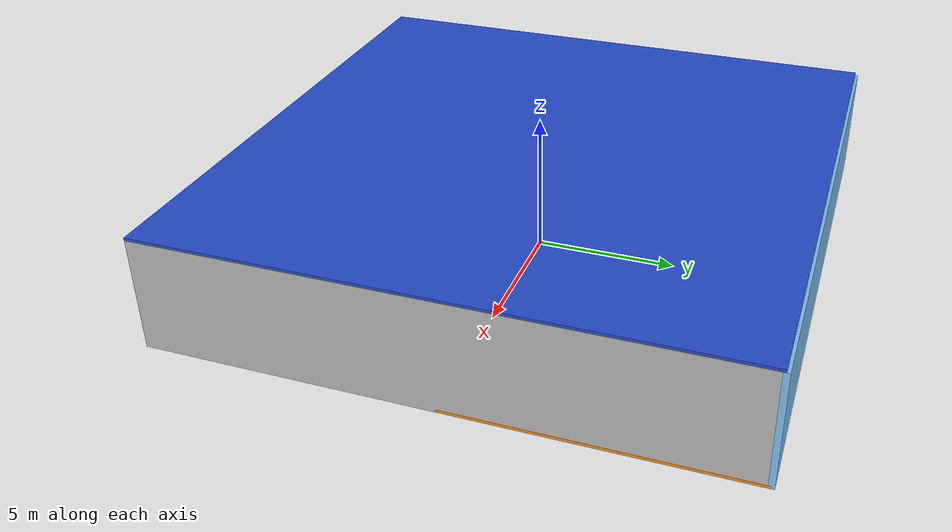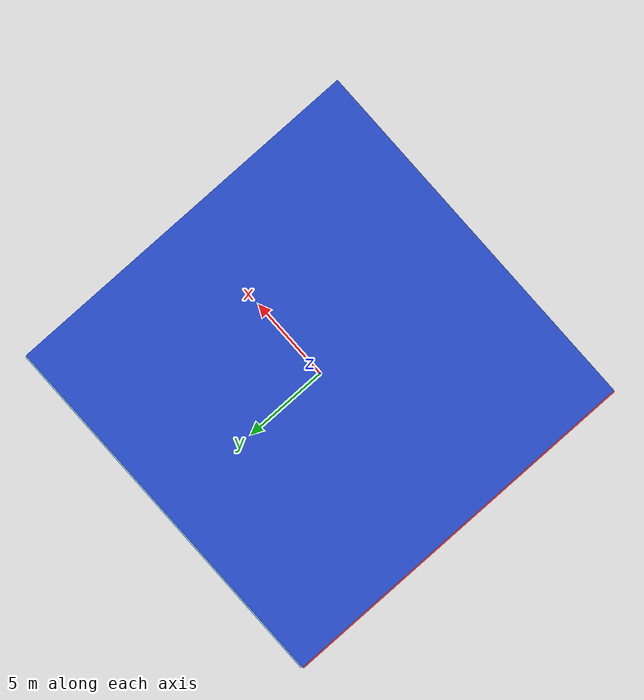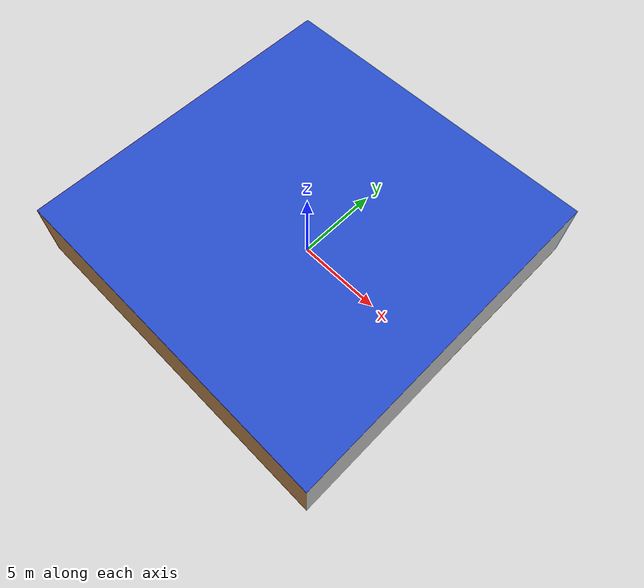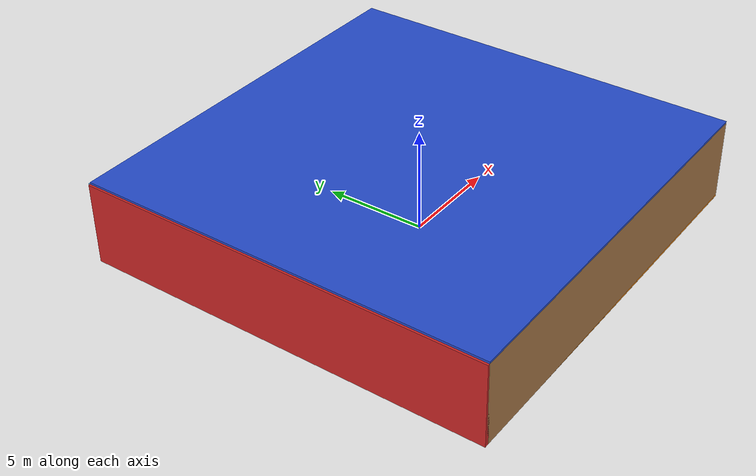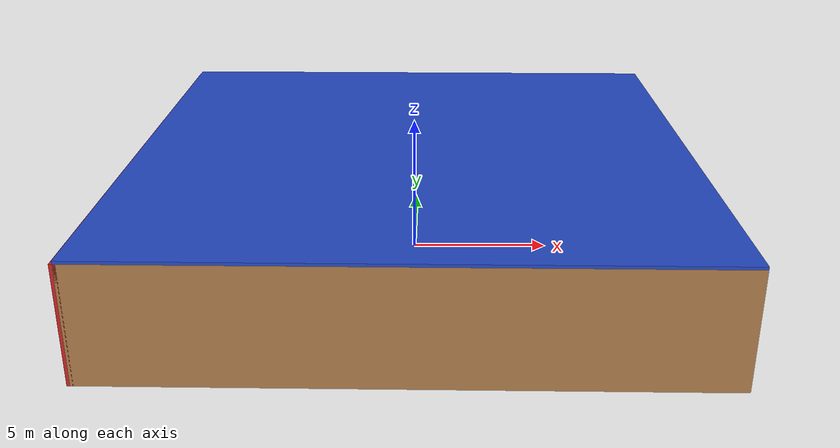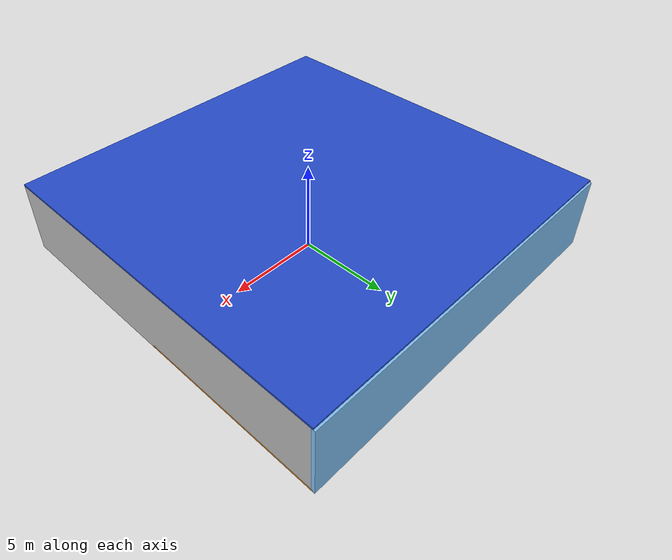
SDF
<sdf version="1.4">
 <world name="default">
  <physics type="ode">
   <max_step_size>0.001</max_step_size>
   <real_time_factor>1</real_time_factor>
   <real_time_update_rate>1000</real_time_update_rate>
   <gravity>0 0 -9.8</gravity>
  </physics>
  <scene><ambient>0.4 0.4 0.4 1</ambient><background>0.7 0.7 0.7 1</background><shadows>1</shadows></scene>
  <model name="Surrounding">
   <static>1</static>
   <link name="Ceiling">
    <collision name="Ceiling_Collision"><geometry><box><size>20 20 0.1</size></box></geometry></collision>
    <visual name="Ceiling_Visual">
     <geometry><box><size>20 20 0.1</size></box></geometry>
     <material>
      <script><uri>file://media/materials/scripts/gazebo.material</uri><name>Gazebo/BlueGlow</name></script>
     </material>
    </visual>
    <pose>0 0 4.05 0 0 0</pose>
   </link>
   <link name="Wall_South">
    <collision name="Wall_South_Collision">
     <geometry><box><size>20 0 4</size></box></geometry>
     <pose>0 0 2 0 -0 0</pose>
    </collision>
    <visual name="Wall_South_Visual">
     <pose>0 0 2 0 -0 0</pose>
     <geometry><box><size>20 0 4</size></box></geometry>
     <material>
      <script><uri>file://media/materials/scripts/gazebo.material</uri><name>Gazebo/WoodPallet</name></script>
     </material>
    </visual>
    <velocity_decay><linear>0</linear><angular>0</angular></velocity_decay>
    <pose>0 -10 0 0 -0 0</pose>
   </link>
   <link name="Wall_East">
    <collision name="Wall_21_Collision">
     <geometry><box><size>20 0 4</size></box></geometry>
     <pose>0 0 2 0 -0 0</pose>
    </collision>
    <visual name="Wall_21_Visual">
     <pose>0 0 2 0 -0 0</pose>
     <geometry><box><size>20 0 4</size></box></geometry>
     <material>
      <script><uri>file://media/materials/scripts/gazebo.material</uri><name>Gazebo/CloudySky</name></script>
     </material>
    </visual>
    <velocity_decay><linear>0</linear><angular>0</angular></velocity_decay>
    <pose>10 0 0 0 -0 1.5708</pose>
   </link>
   <link name="Wall_North">
    <collision name="Wall_22_Collision">
     <geometry><box><size>20 0.2 4</size></box></geometry>
     <pose>0 0 2 0 -0 0</pose>
    </collision>
    <visual name="Wall_22_Visual">
     <pose>0 0 2 0 -0 0</pose>
     <geometry><box><size>20 0.2 4</size></box></geometry>
     <material>
      <script><uri>file://media/materials/scripts/gazebo.material</uri><name>Gazebo/SkyBlue</name></script>
     </material>
    </visual>
    <velocity_decay><linear>0</linear><angular>0</angular></velocity_decay>
    <pose>0 10 0 0 -0 0</pose>
   </link>
   <link name="Wall_West">
    <collision name="Wall_23_Collision">
     <geometry><box><size>20 0.2 4</size></box></geometry>
     <pose>0 0 2 0 -0 0</pose>
    </collision>
    <visual name="Wall_23_Visual">
     <pose>0 0 2 0 -0 0</pose>
     <geometry><box><size>20 0.2 4</size></box></geometry>
     <material>
      <script><uri>file://media/materials/scripts/gazebo.material</uri><name>Gazebo/RedBright</name></script>
     </material>
    </visual>
    <velocity_decay><linear>0</linear><angular>0</angular></velocity_decay>
    <pose>-10 0 0 0 0 -1.5708</pose>
   </link>
   <link name="Ground_link">
    <collision name="collision">
     <pose>0 0 .05 0 -0 0</pose>
     <geometry><box><size>20 20 0.1</size></box></geometry>
    </collision>
    <visual name="visual">
     <pose>0 0 .05 0 -0 0</pose>
     <geometry><box><size>20 20 0.1</size></box></geometry>
     <material>
      <script><uri>file://media/materials/scripts/gazebo.material</uri><name>Gazebo/Orange</name></script>
     </material>
    </visual>
   </link>
   <static>1</static>
  </model>
  <spherical_coordinates>
   <surface_model>EARTH_WGS84</surface_model>
   <latitude_deg>0</latitude_deg>
   <longitude_deg>0</longitude_deg>
   <elevation>0</elevation>
   <heading_deg>0</heading_deg>
  </spherical_coordinates>
  <light name="lightball_0" type="diffuse">
   <diffuse>0.8 0.8 0.8 1</diffuse>
   <specular>0.2 0.2 0.2 1</specular>
   <attenuation>
    <range>100</range>
    <constant>0.7</constant>
    <linear>0.01</linear>
    <quadratic>0.001</quadratic>
   </attenuation>
   <direction>-0.5 0.1 -0.9</direction>
   <pose>0.316599103269 -2.78110284815 2.04177814235 0 0 0</pose>
  </light>
  <light name="lightball_1" type="diffuse">
   <diffuse>0.8 0.8 0.8 1</diffuse>
   <specular>0.2 0.2 0.2 1</specular>
   <attenuation>
    <range>100</range>
    <constant>0.7</constant>
    <linear>0.01</linear>
    <quadratic>0.001</quadratic>
   </attenuation>
   <direction>-0.5 0.1 -0.9</direction>
   <pose>-9.27726356233 3.84564657957 2.92855250227 0 0 0</pose>
  </light>
  <light name="lightball_2" type="diffuse">
   <diffuse>0.8 0.8 0.8 1</diffuse>
   <specular>0.2 0.2 0.2 1</specular>
   <attenuation>
    <range>100</range>
    <constant>0.7</constant>
    <linear>0.01</linear>
    <quadratic>0.001</quadratic>
   </attenuation>
   <direction>-0.5 0.1 -0.9</direction>
   <pose>-9.70217821951 1.83970664868 1.06290176146 0 0 0</pose>
  </light>
  <light name="lightball_3" type="diffuse">
   <diffuse>0.8 0.8 0.8 1</diffuse>
   <specular>0.2 0.2 0.2 1</specular>
   <attenuation>
    <range>100</range>
    <constant>0.7</constant>
    <linear>0.01</linear>
    <quadratic>0.001</quadratic>
   </attenuation>
   <direction>-0.5 0.1 -0.9</direction>
   <pose>8.83262316472 -2.16034405856 3.21132435309 0 0 0</pose>
  </light>
  <light name="lightball_4" type="diffuse">
   <diffuse>0.8 0.8 0.8 1</diffuse>
   <specular>0.2 0.2 0.2 1</specular>
   <attenuation>
    <range>100</range>
    <constant>0.7</constant>
    <linear>0.01</linear>
    <quadratic>0.001</quadratic>
   </attenuation>
   <direction>-0.5 0.1 -0.9</direction>
   <pose>-7.70738905415 -3.11957199316 2.30304602206 0 0 0</pose>
  </light>
  <light name="lightball_5" type="diffuse">
   <diffuse>0.8 0.8 0.8 1</diffuse>
   <specular>0.2 0.2 0.2 1</specular>
   <attenuation>
    <range>100</range>
    <constant>0.7</constant>
    <linear>0.01</linear>
    <quadratic>0.001</quadratic>
   </attenuation>
   <direction>-0.5 0.1 -0.9</direction>
   <pose>1.58067411857 5.77778811312 1.74423018782 0 0 0</pose>
  </light>
  <light name="lightball_6" type="diffuse">
   <diffuse>0.8 0.8 0.8 1</diffuse>
   <specular>0.2 0.2 0.2 1</specular>
   <attenuation>
    <range>100</range>
    <constant>0.7</constant>
    <linear>0.01</linear>
    <quadratic>0.001</quadratic>
   </attenuation>
   <direction>-0.5 0.1 -0.9</direction>
   <pose>9.86993275722 -3.67793253247 3.26900472545 0 0 0</pose>
  </light>
  <include><uri>model://cabinet</uri><pose>-7.72725922779 2.18737391282 0 0 0 0.812866186201</pose></include>
  <include>
   <uri>model://construction_cone</uri>
   <pose>-7.15768836568 4.17370776794 0 0 0 1.77877236764</pose>
  </include>
  <include>
   <uri>model://textured_shapes</uri>
   <pose>-0.312937444792 1.9363278835 0 0 0 2.3347091094</pose>
  </include>
  <include><uri>model://cabinet</uri><pose>0.499792038024 -5.60924333162 0 0 0 2.564332811</pose></include>
  <include>
   <uri>model://textured_shapes</uri>
   <pose>3.59019507333 -1.64985656686 0 0 0 1.62370369646</pose>
  </include>
  <include><uri>model://cabinet</uri><pose>4.2675016399 1.47270940846 0 0 0 2.70549221933</pose></include>
  <include>
   <uri>model://construction_cone</uri>
   <pose>7.34535012891 -4.02960758916 0 0 0 1.03078183508</pose>
  </include>
 </world>
</sdf>

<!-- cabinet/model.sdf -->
<sdf version="1.5">
  <model name="cabinet">
    <static>true</static>
    <link name="cabinet_bottom_plate">
      <inertial>
        <pose>0 0 -1 0 0 0</pose>
        <inertia>
          <ixx>2.050000</ixx>
          <ixy>0</ixy>
          <ixz>0</ixz>
          <iyy>2.050000</iyy>
          <iyz>0</iyz>
          <izz>2.050000</izz>
        </inertia>
        <mass>25.000000</mass>
      </inertial>
      <collision name="cabinet_bottom_plate_geom">
        <pose>0 0 0.010000 0 0 0</pose>
        <geometry>
          <box>
            <size>0.450000 0.450000 0.020000</size>
          </box>
        </geometry>
      </collision>
      <visual name="cabinet_bottom_plate_geom_visual">
        <pose>0 0 0.010000 0 0 0</pose>
        <geometry>
          <box>
            <size>0.450000 0.450000 0.020000</size>
          </box>
        </geometry>
        <material>
          <script>
            <uri>model://media/materials/scripts/gazebo.material</uri>
            <name>Gazebo/Wood</name>
          </script>
        </material>
      </visual>
      <collision name="cabinet_bottom_plate_geom_cabinet_back_plate">
        <pose>0.235000 0 0.510000 0 0 0</pose>
        <geometry>
          <box>
            <size>0.020000 0.450000 1.020000</size>
          </box>
        </geometry>
      </collision>
      <visual name="cabinet_bottom_plate_geom_cabinet_back_plate_visual">
        <pose>0.235000 0 0.510000 0 0 0</pose>
        <geometry>
          <box>
            <size>0.020000 0.450000 1.020000</size>
          </box>
        </geometry>
        <material>
          <script>
            <uri>model://media/materials/scripts/gazebo.material</uri>
            <name>Gazebo/Wood</name>
          </script>
        </material>
      </visual>
      <collision name="cabinet_bottom_plate_geom_cabinet_left_plate">
        <pose>0 0.235000 0.510000 0 0 0</pose>
        <geometry>
          <box>
            <size>0.450000 0.020000 1.020000</size>
          </box>
        </geometry>
      </collision>
      <visual name="cabinet_bottom_plate_geom_cabinet_left_plate_visual">
        <pose>0 0.235000 0.510000 0 0 0</pose>
        <geometry>
          <box>
            <size>0.450000 0.020000 1.020000</size>
          </box>
        </geometry>
        <material>
          <script>
            <uri>model://media/materials/scripts/gazebo.material</uri>
            <name>Gazebo/Wood</name>
          </script>
        </material>
      </visual>
      <collision name="cabinet_bottom_plate_geom_cabinet_middle_plate">
        <pose>0 0 0.510000 0 0 0</pose>
        <geometry>
          <box>
            <size>0.450000 0.450000 0.020000</size>
          </box>
        </geometry>
      </collision>
      <visual name="cabinet_bottom_plate_geom_cabinet_middle_plate_visual">
        <pose>0 0 0.510000 0 0 0</pose>
        <geometry>
          <box>
            <size>0.450000 0.450000 0.020000</size>
          </box>
        </geometry>
        <material>
          <script>
            <uri>model://media/materials/scripts/gazebo.material</uri>
            <name>Gazebo/Wood</name>
          </script>
        </material>
      </visual>
      <collision name="cabinet_bottom_plate_geom_cabinet_right_plate">
        <pose>0 -0.235000 0.510000 0 0 0</pose>
        <geometry>
          <box>
            <size>0.450000 0.020000 1.020000</size>
          </box>
        </geometry>
      </collision>
      <visual name="cabinet_bottom_plate_geom_cabinet_right_plate_visual">
        <pose>0 -0.235000 0.510000 0 0 0</pose>
        <geometry>
          <box>
            <size>0.450000 0.020000 1.020000</size>
          </box>
        </geometry>
        <material>
          <script>
            <uri>model://media/materials/scripts/gazebo.material</uri>
            <name>Gazebo/Wood</name>
          </script>
        </material>
      </visual>
      <collision name="cabinet_bottom_plate_geom_cabinet_top_plate">
        <pose>0 0 1.010000 0 0 0</pose>
        <geometry>
          <box>
            <size>0.450000 0.450000 0.020000</size>
          </box>
        </geometry>
      </collision>
      <visual name="cabinet_bottom_plate_geom_cabinet_top_plate_visual">
        <pose>0 0 1.010000 0 0 0</pose>
        <geometry>
          <box>
            <size>0.450000 0.450000 0.020000</size>
          </box>
        </geometry>
        <material>
          <script>
            <uri>model://media/materials/scripts/gazebo.material</uri>
            <name>Gazebo/Wood</name>
          </script>
        </material>
      </visual>
    </link>
  </model>
</sdf>

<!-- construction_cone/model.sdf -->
<sdf version="1.5">
  <model name="Construction Cone">
    <link name="link">
      <collision name="collision">
        <geometry>
          <mesh>
            <scale>10 10 10</scale>
            <uri>file://isr-testbed/construction_cone/meshes/construction_cone.dae</uri>
          </mesh>
        </geometry>
      </collision>
      <visual name="visual">
        <geometry>
          <mesh>
            <scale>10 10 10</scale>
            <uri>file://isr-testbed/construction_cone/meshes/construction_cone.dae</uri>
          </mesh>
        </geometry>
      </visual>
    </link>
  </model>
</sdf>

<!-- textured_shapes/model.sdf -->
<sdf version="1.6">
  <model name="textured_shapes">
    <pose>0 0 0.5 0 0 0</pose>
    <link name="box">
      <pose>0 -1.5 0 0 0 0</pose>
      <collision name="collision">
        <geometry>
          <box>
            <size>1 1 1</size>
          </box>
        </geometry>
      </collision>
      <visual name="visual">
        <geometry>
          <box>
            <size>1 1 1</size>
          </box>
        </geometry>
        <material>
          <script>
            <uri>model://../model_source/models/textured_shapes/materials/scripts</uri>
            <uri>model://../model_source/models/textured_shapes/materials/textures</uri>
            <name>TexturedShape/Squares</name>
          </script>
        </material>
      </visual>
    </link>
    <link name="sphere">
      <collision name="collision">
        <geometry>
          <sphere>
            <radius>0.5</radius>
          </sphere>
        </geometry>
      </collision>
      <visual name="visual">
        <geometry>
          <sphere>
            <radius>0.5</radius>
          </sphere>
        </geometry>
        <material>
          <script>
            <uri>model://../model_source/models/textured_shapes/materials/scripts</uri>
            <uri>model://../model_source/models/textured_shapes/materials/textures</uri>
            <name>TexturedShape/Squares</name>
          </script>
        </material>
      </visual>
    </link>
    <link name="cylinder">
      <pose>0 1.5 0 0 0 0</pose>
      <collision name="collision">
        <geometry>
          <cylinder>
            <radius>0.5</radius>
            <length>1</length>
          </cylinder>
        </geometry>
      </collision>
      <visual name="visual">
        <geometry>
          <cylinder>
            <radius>0.5</radius>
            <length>1</length>
          </cylinder>
        </geometry>
        <material>
          <script>
            <uri>model://../model_source/models/textured_shapes/materials/scripts</uri>
            <uri>model://../model_source/models/textured_shapes/materials/textures</uri>
            <name>TexturedShape/Squares</name>
          </script>
        </material>
      </visual>
    </link>
  </model>
</sdf>
